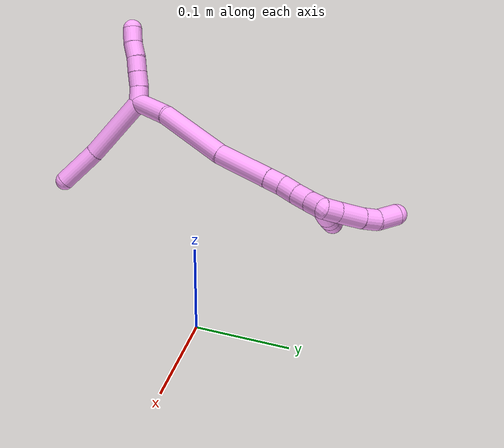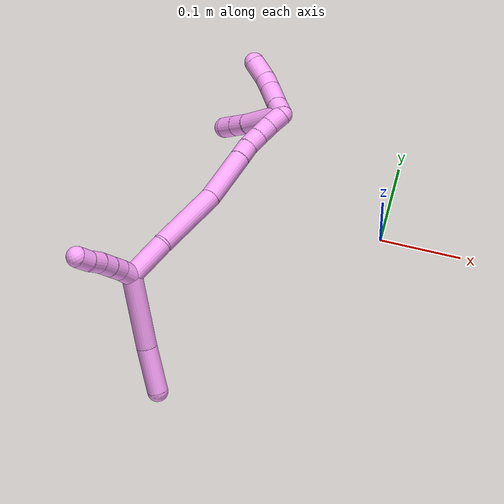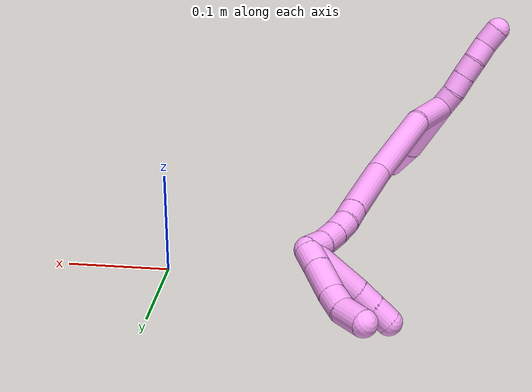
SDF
<sdf version="1.7">
 <world name="default">
  <model name="4">
   <static>0</static>
   <link name="4">
    <collision name="collision-cylinder-e_1_2_8">
     <pose>-0.01257 0.000768 -0.044527 -3.12434 -0.275113 3.01713</pose>
     <geometry><cylinder><radius>0.0125</radius><length>0.092547</length></cylinder></geometry>
     <surface>
      <friction><ode><mu>1.16</mu><mu2>1.16</mu2><slip1>0</slip1><slip2>0</slip2></ode></friction>
      <contact><ode><kp>1e+06</kp><kd>1</kd><max_vel>0</max_vel><min_depth>0.001</min_depth></ode></contact>
     </surface>
    </collision>
    <visual name="visual-cylinder-e_1_2_8">
     <pose>-0.01257 0.000768 -0.044527 -3.12434 -0.275113 3.01713</pose>
     <geometry><cylinder><radius>0.0125</radius><length>0.092547</length></cylinder></geometry>
     <material><ambient>1 0.65098 0.996078 1</ambient></material>
    </visual>
    <collision name="collision-cylinder-e_2_8_6">
     <pose>-0.031917 -0.001067 -0.116847 3.04818 -0.238131 -2.39667</pose>
     <geometry><cylinder><radius>0.0125</radius><length>0.057453</length></cylinder></geometry>
     <surface>
      <friction><ode><mu>1.16</mu><mu2>1.16</mu2><slip1>0</slip1><slip2>0</slip2></ode></friction>
      <contact><ode><kp>1e+06</kp><kd>1</kd><max_vel>0</max_vel><min_depth>0.001</min_depth></ode></contact>
     </surface>
    </collision>
    <visual name="visual-cylinder-e_2_8_6">
     <pose>-0.031917 -0.001067 -0.116847 3.04818 -0.238131 -2.39667</pose>
     <geometry><cylinder><radius>0.0125</radius><length>0.057453</length></cylinder></geometry>
     <material><ambient>1 0.65098 0.996078 1</ambient></material>
    </visual>
    <collision name="collision-cylinder-e_1_2_9">
     <pose>-0.003551 -0.004897 0.007963 0.551326 -0.363019 -0.103735</pose>
     <geometry><cylinder><radius>0.0125</radius><length>0.02</length></cylinder></geometry>
     <surface>
      <friction><ode><mu>1.16</mu><mu2>1.16</mu2><slip1>0</slip1><slip2>0</slip2></ode></friction>
      <contact><ode><kp>1e+06</kp><kd>1</kd><max_vel>0</max_vel><min_depth>0.001</min_depth></ode></contact>
     </surface>
    </collision>
    <visual name="visual-cylinder-e_1_2_9">
     <pose>-0.003551 -0.004897 0.007963 0.551326 -0.363019 -0.103735</pose>
     <geometry><cylinder><radius>0.0125</radius><length>0.02</length></cylinder></geometry>
     <material><ambient>1 0.65098 0.996078 1</ambient></material>
    </visual>
    <collision name="collision-cylinder-e_2_9_10">
     <pose>-0.010505 -0.016121 0.022882 0.738173 -0.347272 -0.135488</pose>
     <geometry><cylinder><radius>0.0125</radius><length>0.02</length></cylinder></geometry>
     <surface>
      <friction><ode><mu>1.16</mu><mu2>1.16</mu2><slip1>0</slip1><slip2>0</slip2></ode></friction>
      <contact><ode><kp>1e+06</kp><kd>1</kd><max_vel>0</max_vel><min_depth>0.001</min_depth></ode></contact>
     </surface>
    </collision>
    <visual name="visual-cylinder-e_2_9_10">
     <pose>-0.010505 -0.016121 0.022882 0.738173 -0.347272 -0.135488</pose>
     <geometry><cylinder><radius>0.0125</radius><length>0.02</length></cylinder></geometry>
     <material><ambient>1 0.65098 0.996078 1</ambient></material>
    </visual>
    <collision name="collision-cylinder-e_3_10_11">
     <pose>-0.017469 -0.028399 0.037042 0.690302 -0.364054 -0.132165</pose>
     <geometry><cylinder><radius>0.0125</radius><length>0.02</length></cylinder></geometry>
     <surface>
      <friction><ode><mu>1.16</mu><mu2>1.16</mu2><slip1>0</slip1><slip2>0</slip2></ode></friction>
      <contact><ode><kp>1e+06</kp><kd>1</kd><max_vel>0</max_vel><min_depth>0.001</min_depth></ode></contact>
     </surface>
    </collision>
    <visual name="visual-cylinder-e_3_10_11">
     <pose>-0.017469 -0.028399 0.037042 0.690302 -0.364054 -0.132165</pose>
     <geometry><cylinder><radius>0.0125</radius><length>0.02</length></cylinder></geometry>
     <material><ambient>1 0.65098 0.996078 1</ambient></material>
    </visual>
    <collision name="collision-cylinder-e_4_11_12">
     <pose>-0.025297 -0.040957 0.050423 0.819195 -0.440825 -0.193936</pose>
     <geometry><cylinder><radius>0.0125</radius><length>0.02</length></cylinder></geometry>
     <surface>
      <friction><ode><mu>1.16</mu><mu2>1.16</mu2><slip1>0</slip1><slip2>0</slip2></ode></friction>
      <contact><ode><kp>1e+06</kp><kd>1</kd><max_vel>0</max_vel><min_depth>0.001</min_depth></ode></contact>
     </surface>
    </collision>
    <visual name="visual-cylinder-e_4_11_12">
     <pose>-0.025297 -0.040957 0.050423 0.819195 -0.440825 -0.193936</pose>
     <geometry><cylinder><radius>0.0125</radius><length>0.02</length></cylinder></geometry>
     <material><ambient>1 0.65098 0.996078 1</ambient></material>
    </visual>
    <collision name="collision-cylinder-e_5_12_5">
     <pose>-0.033659 -0.052939 0.06397 0.62994 -0.421952 -0.13933</pose>
     <geometry><cylinder><radius>0.0125</radius><length>0.02</length></cylinder></geometry>
     <surface>
      <friction><ode><mu>1.16</mu><mu2>1.16</mu2><slip1>0</slip1><slip2>0</slip2></ode></friction>
      <contact><ode><kp>1e+06</kp><kd>1</kd><max_vel>0</max_vel><min_depth>0.001</min_depth></ode></contact>
     </surface>
    </collision>
    <visual name="visual-cylinder-e_5_12_5">
     <pose>-0.033659 -0.052939 0.06397 0.62994 -0.421952 -0.13933</pose>
     <geometry><cylinder><radius>0.0125</radius><length>0.02</length></cylinder></geometry>
     <material><ambient>1 0.65098 0.996078 1</ambient></material>
    </visual>
    <collision name="collision-cylinder-e_1_2_13">
     <pose>0.023074 0.013123 0.004688 -1.22766 1.0275 -0.756909</pose>
     <geometry><cylinder><radius>0.0125</radius><length>0.053911</length></cylinder></geometry>
     <surface>
      <friction><ode><mu>1.16</mu><mu2>1.16</mu2><slip1>0</slip1><slip2>0</slip2></ode></friction>
      <contact><ode><kp>1e+06</kp><kd>1</kd><max_vel>0</max_vel><min_depth>0.001</min_depth></ode></contact>
     </surface>
    </collision>
    <visual name="visual-cylinder-e_1_2_13">
     <pose>0.023074 0.013123 0.004688 -1.22766 1.0275 -0.756909</pose>
     <geometry><cylinder><radius>0.0125</radius><length>0.053911</length></cylinder></geometry>
     <material><ambient>1 0.65098 0.996078 1</ambient></material>
    </visual>
    <collision name="collision-cylinder-e_2_13_14">
     <pose>0.080692 0.058317 0.010881 -1.52392 0.821948 -0.788147</pose>
     <geometry><cylinder><radius>0.0125</radius><length>0.09432</length></cylinder></geometry>
     <surface>
      <friction><ode><mu>1.16</mu><mu2>1.16</mu2><slip1>0</slip1><slip2>0</slip2></ode></friction>
      <contact><ode><kp>1e+06</kp><kd>1</kd><max_vel>0</max_vel><min_depth>0.001</min_depth></ode></contact>
     </surface>
    </collision>
    <visual name="visual-cylinder-e_2_13_14">
     <pose>0.080692 0.058317 0.010881 -1.52392 0.821948 -0.788147</pose>
     <geometry><cylinder><radius>0.0125</radius><length>0.09432</length></cylinder></geometry>
     <material><ambient>1 0.65098 0.996078 1</ambient></material>
    </visual>
    <collision name="collision-cylinder-e_3_14_15">
     <pose>0.139834 0.113815 0.018618 -1.3108 0.792701 -0.622535</pose>
     <geometry><cylinder><radius>0.0125</radius><length>0.069073</length></cylinder></geometry>
     <surface>
      <friction><ode><mu>1.16</mu><mu2>1.16</mu2><slip1>0</slip1><slip2>0</slip2></ode></friction>
      <contact><ode><kp>1e+06</kp><kd>1</kd><max_vel>0</max_vel><min_depth>0.001</min_depth></ode></contact>
     </surface>
    </collision>
    <visual name="visual-cylinder-e_3_14_15">
     <pose>0.139834 0.113815 0.018618 -1.3108 0.792701 -0.622535</pose>
     <geometry><cylinder><radius>0.0125</radius><length>0.069073</length></cylinder></geometry>
     <material><ambient>1 0.65098 0.996078 1</ambient></material>
    </visual>
    <collision name="collision-cylinder-e_4_15_16">
     <pose>0.171495 0.144414 0.026697 -1.31876 0.761593 -0.601772</pose>
     <geometry><cylinder><radius>0.0125</radius><length>0.020467</length></cylinder></geometry>
     <surface>
      <friction><ode><mu>1.16</mu><mu2>1.16</mu2><slip1>0</slip1><slip2>0</slip2></ode></friction>
      <contact><ode><kp>1e+06</kp><kd>1</kd><max_vel>0</max_vel><min_depth>0.001</min_depth></ode></contact>
     </surface>
    </collision>
    <visual name="visual-cylinder-e_4_15_16">
     <pose>0.171495 0.144414 0.026697 -1.31876 0.761593 -0.601772</pose>
     <geometry><cylinder><radius>0.0125</radius><length>0.020467</length></cylinder></geometry>
     <material><ambient>1 0.65098 0.996078 1</ambient></material>
    </visual>
    <collision name="collision-cylinder-e_5_16_17">
     <pose>0.186789 0.157956 0.029408 -1.43582 0.907876 -0.805674</pose>
     <geometry><cylinder><radius>0.0125</radius><length>0.020888</length></cylinder></geometry>
     <surface>
      <friction><ode><mu>1.16</mu><mu2>1.16</mu2><slip1>0</slip1><slip2>0</slip2></ode></friction>
      <contact><ode><kp>1e+06</kp><kd>1</kd><max_vel>0</max_vel><min_depth>0.001</min_depth></ode></contact>
     </surface>
    </collision>
    <visual name="visual-cylinder-e_5_16_17">
     <pose>0.186789 0.157956 0.029408 -1.43582 0.907876 -0.805674</pose>
     <geometry><cylinder><radius>0.0125</radius><length>0.020888</length></cylinder></geometry>
     <material><ambient>1 0.65098 0.996078 1</ambient></material>
    </visual>
    <collision name="collision-cylinder-e_6_17_18">
     <pose>0.203674 0.169856 0.031529 -1.34755 0.99056 -0.814386</pose>
     <geometry><cylinder><radius>0.0125</radius><length>0.020693</length></cylinder></geometry>
     <surface>
      <friction><ode><mu>1.16</mu><mu2>1.16</mu2><slip1>0</slip1><slip2>0</slip2></ode></friction>
      <contact><ode><kp>1e+06</kp><kd>1</kd><max_vel>0</max_vel><min_depth>0.001</min_depth></ode></contact>
     </surface>
    </collision>
    <visual name="visual-cylinder-e_6_17_18">
     <pose>0.203674 0.169856 0.031529 -1.34755 0.99056 -0.814386</pose>
     <geometry><cylinder><radius>0.0125</radius><length>0.020693</length></cylinder></geometry>
     <material><ambient>1 0.65098 0.996078 1</ambient></material>
    </visual>
    <collision name="collision-cylinder-e_7_18_1">
     <pose>0.221838 0.179186 0.034083 -1.24144 1.17147 -0.885801</pose>
     <geometry><cylinder><radius>0.0125</radius><length>0.020648</length></cylinder></geometry>
     <surface>
      <friction><ode><mu>1.16</mu><mu2>1.16</mu2><slip1>0</slip1><slip2>0</slip2></ode></friction>
      <contact><ode><kp>1e+06</kp><kd>1</kd><max_vel>0</max_vel><min_depth>0.001</min_depth></ode></contact>
     </surface>
    </collision>
    <visual name="visual-cylinder-e_7_18_1">
     <pose>0.221838 0.179186 0.034083 -1.24144 1.17147 -0.885801</pose>
     <geometry><cylinder><radius>0.0125</radius><length>0.020648</length></cylinder></geometry>
     <material><ambient>1 0.65098 0.996078 1</ambient></material>
    </visual>
    <collision name="collision-cylinder-e_1_1_19">
     <pose>0.230767 0.192435 0.039022 -1.20312 -0.057448 0.03944</pose>
     <geometry><cylinder><radius>0.0125</radius><length>0.02029</length></cylinder></geometry>
     <surface>
      <friction><ode><mu>1.16</mu><mu2>1.16</mu2><slip1>0</slip1><slip2>0</slip2></ode></friction>
      <contact><ode><kp>1e+06</kp><kd>1</kd><max_vel>0</max_vel><min_depth>0.001</min_depth></ode></contact>
     </surface>
    </collision>
    <visual name="visual-cylinder-e_1_1_19">
     <pose>0.230767 0.192435 0.039022 -1.20312 -0.057448 0.03944</pose>
     <geometry><cylinder><radius>0.0125</radius><length>0.02029</length></cylinder></geometry>
     <material><ambient>1 0.65098 0.996078 1</ambient></material>
    </visual>
    <collision name="collision-cylinder-e_2_19_20">
     <pose>0.229931 0.21696 0.048802 -1.18401 -0.015633 0.010512</pose>
     <geometry><cylinder><radius>0.0125</radius><length>0.032556</length></cylinder></geometry>
     <surface>
      <friction><ode><mu>1.16</mu><mu2>1.16</mu2><slip1>0</slip1><slip2>0</slip2></ode></friction>
      <contact><ode><kp>1e+06</kp><kd>1</kd><max_vel>0</max_vel><min_depth>0.001</min_depth></ode></contact>
     </surface>
    </collision>
    <visual name="visual-cylinder-e_2_19_20">
     <pose>0.229931 0.21696 0.048802 -1.18401 -0.015633 0.010512</pose>
     <geometry><cylinder><radius>0.0125</radius><length>0.032556</length></cylinder></geometry>
     <material><ambient>1 0.65098 0.996078 1</ambient></material>
    </visual>
    <collision name="collision-cylinder-e_3_20_21">
     <pose>0.229355 0.24092 0.059751 -1.07475 -0.031782 0.018939</pose>
     <geometry><cylinder><radius>0.0125</radius><length>0.02022</length></cylinder></geometry>
     <surface>
      <friction><ode><mu>1.16</mu><mu2>1.16</mu2><slip1>0</slip1><slip2>0</slip2></ode></friction>
      <contact><ode><kp>1e+06</kp><kd>1</kd><max_vel>0</max_vel><min_depth>0.001</min_depth></ode></contact>
     </surface>
    </collision>
    <visual name="visual-cylinder-e_3_20_21">
     <pose>0.229355 0.24092 0.059751 -1.07475 -0.031782 0.018939</pose>
     <geometry><cylinder><radius>0.0125</radius><length>0.02022</length></cylinder></geometry>
     <material><ambient>1 0.65098 0.996078 1</ambient></material>
    </visual>
    <collision name="collision-cylinder-e_4_21_4">
     <pose>0.227042 0.258917 0.074277 -0.753199 -0.148439 0.058795</pose>
     <geometry><cylinder><radius>0.0125</radius><length>0.026935</length></cylinder></geometry>
     <surface>
      <friction><ode><mu>1.16</mu><mu2>1.16</mu2><slip1>0</slip1><slip2>0</slip2></ode></friction>
      <contact><ode><kp>1e+06</kp><kd>1</kd><max_vel>0</max_vel><min_depth>0.001</min_depth></ode></contact>
     </surface>
    </collision>
    <visual name="visual-cylinder-e_4_21_4">
     <pose>0.227042 0.258917 0.074277 -0.753199 -0.148439 0.058795</pose>
     <geometry><cylinder><radius>0.0125</radius><length>0.026935</length></cylinder></geometry>
     <material><ambient>1 0.65098 0.996078 1</ambient></material>
    </visual>
    <collision name="collision-cylinder-e_1_1_22">
     <pose>0.208372 0.201572 0.033808 -1.65521 -0.888879 0.95622</pose>
     <geometry><cylinder><radius>0.0125</radius><length>0.059194</length></cylinder></geometry>
     <surface>
      <friction><ode><mu>1.16</mu><mu2>1.16</mu2><slip1>0</slip1><slip2>0</slip2></ode></friction>
      <contact><ode><kp>1e+06</kp><kd>1</kd><max_vel>0</max_vel><min_depth>0.001</min_depth></ode></contact>
     </surface>
    </collision>
    <visual name="visual-cylinder-e_1_1_22">
     <pose>0.208372 0.201572 0.033808 -1.65521 -0.888879 0.95622</pose>
     <geometry><cylinder><radius>0.0125</radius><length>0.059194</length></cylinder></geometry>
     <material><ambient>1 0.65098 0.996078 1</ambient></material>
    </visual>
    <collision name="collision-cylinder-e_2_22_23">
     <pose>0.178144 0.227339 0.032012 -1.60189 -0.790048 0.812382</pose>
     <geometry><cylinder><radius>0.0125</radius><length>0.02041</length></cylinder></geometry>
     <surface>
      <friction><ode><mu>1.16</mu><mu2>1.16</mu2><slip1>0</slip1><slip2>0</slip2></ode></friction>
      <contact><ode><kp>1e+06</kp><kd>1</kd><max_vel>0</max_vel><min_depth>0.001</min_depth></ode></contact>
     </surface>
    </collision>
    <visual name="visual-cylinder-e_2_22_23">
     <pose>0.178144 0.227339 0.032012 -1.60189 -0.790048 0.812382</pose>
     <geometry><cylinder><radius>0.0125</radius><length>0.02041</length></cylinder></geometry>
     <material><ambient>1 0.65098 0.996078 1</ambient></material>
    </visual>
    <collision name="collision-cylinder-e_3_23_3">
     <pose>0.163651 0.241692 0.031572 -1.6011 -0.789997 0.811756</pose>
     <geometry><cylinder><radius>0.0125</radius><length>0.020396</length></cylinder></geometry>
     <surface>
      <friction><ode><mu>1.16</mu><mu2>1.16</mu2><slip1>0</slip1><slip2>0</slip2></ode></friction>
      <contact><ode><kp>1e+06</kp><kd>1</kd><max_vel>0</max_vel><min_depth>0.001</min_depth></ode></contact>
     </surface>
    </collision>
    <visual name="visual-cylinder-e_3_23_3">
     <pose>0.163651 0.241692 0.031572 -1.6011 -0.789997 0.811756</pose>
     <geometry><cylinder><radius>0.0125</radius><length>0.020396</length></cylinder></geometry>
     <material><ambient>1 0.65098 0.996078 1</ambient></material>
    </visual>
    <collision name="collision-sphere-3">
     <pose>0.156406 0.248867 0.031354 0 -0 0</pose>
     <geometry><sphere><radius>0.0125</radius></sphere></geometry>
     <surface>
      <friction><ode><mu>1.16</mu><mu2>1.16</mu2><slip1>0</slip1><slip2>0</slip2></ode></friction>
      <contact><ode><kp>1e+06</kp><kd>1</kd><max_vel>0</max_vel><min_depth>0.001</min_depth></ode></contact>
     </surface>
    </collision>
    <visual name="visual-sphere-3">
     <pose>0.156406 0.248867 0.031354 0 -0 0</pose>
     <geometry><sphere><radius>0.0125</radius></sphere></geometry>
     <material><ambient>1 0.65098 0.996078 1</ambient></material>
    </visual>
    <collision name="collision-sphere-23">
     <pose>0.170895 0.234518 0.031789 0 -0 0</pose>
     <geometry><sphere><radius>0.0125</radius></sphere></geometry>
     <surface>
      <friction><ode><mu>1.16</mu><mu2>1.16</mu2><slip1>0</slip1><slip2>0</slip2></ode></friction>
      <contact><ode><kp>1e+06</kp><kd>1</kd><max_vel>0</max_vel><min_depth>0.001</min_depth></ode></contact>
     </surface>
    </collision>
    <visual name="visual-sphere-23">
     <pose>0.170895 0.234518 0.031789 0 -0 0</pose>
     <geometry><sphere><radius>0.0125</radius></sphere></geometry>
     <material><ambient>1 0.65098 0.996078 1</ambient></material>
    </visual>
    <collision name="collision-sphere-22">
     <pose>0.185394 0.22016 0.032236 0 -0 0</pose>
     <geometry><sphere><radius>0.0125</radius></sphere></geometry>
     <surface>
      <friction><ode><mu>1.16</mu><mu2>1.16</mu2><slip1>0</slip1><slip2>0</slip2></ode></friction>
      <contact><ode><kp>1e+06</kp><kd>1</kd><max_vel>0</max_vel><min_depth>0.001</min_depth></ode></contact>
     </surface>
    </collision>
    <visual name="visual-sphere-22">
     <pose>0.185394 0.22016 0.032236 0 -0 0</pose>
     <geometry><sphere><radius>0.0125</radius></sphere></geometry>
     <material><ambient>1 0.65098 0.996078 1</ambient></material>
    </visual>
    <collision name="collision-sphere-4">
     <pose>0.22505 0.268027 0.083993 0 -0 0</pose>
     <geometry><sphere><radius>0.0125</radius></sphere></geometry>
     <surface>
      <friction><ode><mu>1.16</mu><mu2>1.16</mu2><slip1>0</slip1><slip2>0</slip2></ode></friction>
      <contact><ode><kp>1e+06</kp><kd>1</kd><max_vel>0</max_vel><min_depth>0.001</min_depth></ode></contact>
     </surface>
    </collision>
    <visual name="visual-sphere-4">
     <pose>0.22505 0.268027 0.083993 0 -0 0</pose>
     <geometry><sphere><radius>0.0125</radius></sphere></geometry>
     <material><ambient>1 0.65098 0.996078 1</ambient></material>
    </visual>
    <collision name="collision-sphere-21">
     <pose>0.229034 0.249807 0.06456 0 -0 0</pose>
     <geometry><sphere><radius>0.0125</radius></sphere></geometry>
     <surface>
      <friction><ode><mu>1.16</mu><mu2>1.16</mu2><slip1>0</slip1><slip2>0</slip2></ode></friction>
      <contact><ode><kp>1e+06</kp><kd>1</kd><max_vel>0</max_vel><min_depth>0.001</min_depth></ode></contact>
     </surface>
    </collision>
    <visual name="visual-sphere-21">
     <pose>0.229034 0.249807 0.06456 0 -0 0</pose>
     <geometry><sphere><radius>0.0125</radius></sphere></geometry>
     <material><ambient>1 0.65098 0.996078 1</ambient></material>
    </visual>
    <collision name="collision-sphere-20">
     <pose>0.229676 0.232034 0.054941 0 -0 0</pose>
     <geometry><sphere><radius>0.0125</radius></sphere></geometry>
     <surface>
      <friction><ode><mu>1.16</mu><mu2>1.16</mu2><slip1>0</slip1><slip2>0</slip2></ode></friction>
      <contact><ode><kp>1e+06</kp><kd>1</kd><max_vel>0</max_vel><min_depth>0.001</min_depth></ode></contact>
     </surface>
    </collision>
    <visual name="visual-sphere-20">
     <pose>0.229676 0.232034 0.054941 0 -0 0</pose>
     <geometry><sphere><radius>0.0125</radius></sphere></geometry>
     <material><ambient>1 0.65098 0.996078 1</ambient></material>
    </visual>
    <collision name="collision-sphere-11">
     <pose>-0.02103 -0.03435 0.044248 0 -0 0</pose>
     <geometry><sphere><radius>0.0125</radius></sphere></geometry>
     <surface>
      <friction><ode><mu>1.16</mu><mu2>1.16</mu2><slip1>0</slip1><slip2>0</slip2></ode></friction>
      <contact><ode><kp>1e+06</kp><kd>1</kd><max_vel>0</max_vel><min_depth>0.001</min_depth></ode></contact>
     </surface>
    </collision>
    <visual name="visual-sphere-11">
     <pose>-0.02103 -0.03435 0.044248 0 -0 0</pose>
     <geometry><sphere><radius>0.0125</radius></sphere></geometry>
     <material><ambient>1 0.65098 0.996078 1</ambient></material>
    </visual>
    <collision name="collision-sphere-10">
     <pose>-0.013909 -0.022449 0.029837 0 -0 0</pose>
     <geometry><sphere><radius>0.0125</radius></sphere></geometry>
     <surface>
      <friction><ode><mu>1.16</mu><mu2>1.16</mu2><slip1>0</slip1><slip2>0</slip2></ode></friction>
      <contact><ode><kp>1e+06</kp><kd>1</kd><max_vel>0</max_vel><min_depth>0.001</min_depth></ode></contact>
     </surface>
    </collision>
    <visual name="visual-sphere-10">
     <pose>-0.013909 -0.022449 0.029837 0 -0 0</pose>
     <geometry><sphere><radius>0.0125</radius></sphere></geometry>
     <material><ambient>1 0.65098 0.996078 1</ambient></material>
    </visual>
    <collision name="collision-sphere-6">
     <pose>-0.038693 -0.003671 -0.144642 0 -0 0</pose>
     <geometry><sphere><radius>0.0125</radius></sphere></geometry>
     <surface>
      <friction><ode><mu>1.16</mu><mu2>1.16</mu2><slip1>0</slip1><slip2>0</slip2></ode></friction>
      <contact><ode><kp>1e+06</kp><kd>1</kd><max_vel>0</max_vel><min_depth>0.001</min_depth></ode></contact>
     </surface>
    </collision>
    <visual name="visual-sphere-6">
     <pose>-0.038693 -0.003671 -0.144642 0 -0 0</pose>
     <geometry><sphere><radius>0.0125</radius></sphere></geometry>
     <material><ambient>1 0.65098 0.996078 1</ambient></material>
    </visual>
    <collision name="collision-sphere-9">
     <pose>-0.007102 -0.009794 0.015926 0 -0 0</pose>
     <geometry><sphere><radius>0.0125</radius></sphere></geometry>
     <surface>
      <friction><ode><mu>1.16</mu><mu2>1.16</mu2><slip1>0</slip1><slip2>0</slip2></ode></friction>
      <contact><ode><kp>1e+06</kp><kd>1</kd><max_vel>0</max_vel><min_depth>0.001</min_depth></ode></contact>
     </surface>
    </collision>
    <visual name="visual-sphere-9">
     <pose>-0.007102 -0.009794 0.015926 0 -0 0</pose>
     <geometry><sphere><radius>0.0125</radius></sphere></geometry>
     <material><ambient>1 0.65098 0.996078 1</ambient></material>
    </visual>
    <collision name="collision-sphere-2">
     <geometry><sphere><radius>0.0125</radius></sphere></geometry>
     <surface>
      <friction><ode><mu>1.16</mu><mu2>1.16</mu2><slip1>0</slip1><slip2>0</slip2></ode></friction>
      <contact><ode><kp>1e+06</kp><kd>1</kd><max_vel>0</max_vel><min_depth>0.001</min_depth></ode></contact>
     </surface>
    </collision>
    <visual name="visual-sphere-2">
     <geometry><sphere><radius>0.0125</radius></sphere></geometry>
     <material><ambient>1 0.65098 0.996078 1</ambient></material>
    </visual>
    <collision name="collision-sphere-19">
     <pose>0.230185 0.201886 0.042662 0 -0 0</pose>
     <geometry><sphere><radius>0.0125</radius></sphere></geometry>
     <surface>
      <friction><ode><mu>1.16</mu><mu2>1.16</mu2><slip1>0</slip1><slip2>0</slip2></ode></friction>
      <contact><ode><kp>1e+06</kp><kd>1</kd><max_vel>0</max_vel><min_depth>0.001</min_depth></ode></contact>
     </surface>
    </collision>
    <visual name="visual-sphere-19">
     <pose>0.230185 0.201886 0.042662 0 -0 0</pose>
     <geometry><sphere><radius>0.0125</radius></sphere></geometry>
     <material><ambient>1 0.65098 0.996078 1</ambient></material>
    </visual>
    <collision name="collision-sphere-8">
     <pose>-0.025141 0.001537 -0.089053 0 -0 0</pose>
     <geometry><sphere><radius>0.0125</radius></sphere></geometry>
     <surface>
      <friction><ode><mu>1.16</mu><mu2>1.16</mu2><slip1>0</slip1><slip2>0</slip2></ode></friction>
      <contact><ode><kp>1e+06</kp><kd>1</kd><max_vel>0</max_vel><min_depth>0.001</min_depth></ode></contact>
     </surface>
    </collision>
    <visual name="visual-sphere-8">
     <pose>-0.025141 0.001537 -0.089053 0 -0 0</pose>
     <geometry><sphere><radius>0.0125</radius></sphere></geometry>
     <material><ambient>1 0.65098 0.996078 1</ambient></material>
    </visual>
    <collision name="collision-sphere-12">
     <pose>-0.029564 -0.047565 0.056598 0 -0 0</pose>
     <geometry><sphere><radius>0.0125</radius></sphere></geometry>
     <surface>
      <friction><ode><mu>1.16</mu><mu2>1.16</mu2><slip1>0</slip1><slip2>0</slip2></ode></friction>
      <contact><ode><kp>1e+06</kp><kd>1</kd><max_vel>0</max_vel><min_depth>0.001</min_depth></ode></contact>
     </surface>
    </collision>
    <visual name="visual-sphere-12">
     <pose>-0.029564 -0.047565 0.056598 0 -0 0</pose>
     <geometry><sphere><radius>0.0125</radius></sphere></geometry>
     <material><ambient>1 0.65098 0.996078 1</ambient></material>
    </visual>
    <collision name="collision-sphere-5">
     <pose>-0.037755 -0.058313 0.071342 0 -0 0</pose>
     <geometry><sphere><radius>0.0125</radius></sphere></geometry>
     <surface>
      <friction><ode><mu>1.16</mu><mu2>1.16</mu2><slip1>0</slip1><slip2>0</slip2></ode></friction>
      <contact><ode><kp>1e+06</kp><kd>1</kd><max_vel>0</max_vel><min_depth>0.001</min_depth></ode></contact>
     </surface>
    </collision>
    <visual name="visual-sphere-5">
     <pose>-0.037755 -0.058313 0.071342 0 -0 0</pose>
     <geometry><sphere><radius>0.0125</radius></sphere></geometry>
     <material><ambient>1 0.65098 0.996078 1</ambient></material>
    </visual>
    <collision name="collision-sphere-13">
     <pose>0.046149 0.026245 0.009377 0 -0 0</pose>
     <geometry><sphere><radius>0.0125</radius></sphere></geometry>
     <surface>
      <friction><ode><mu>1.16</mu><mu2>1.16</mu2><slip1>0</slip1><slip2>0</slip2></ode></friction>
      <contact><ode><kp>1e+06</kp><kd>1</kd><max_vel>0</max_vel><min_depth>0.001</min_depth></ode></contact>
     </surface>
    </collision>
    <visual name="visual-sphere-13">
     <pose>0.046149 0.026245 0.009377 0 -0 0</pose>
     <geometry><sphere><radius>0.0125</radius></sphere></geometry>
     <material><ambient>1 0.65098 0.996078 1</ambient></material>
    </visual>
    <collision name="collision-sphere-14">
     <pose>0.115236 0.090388 0.012386 0 -0 0</pose>
     <geometry><sphere><radius>0.0125</radius></sphere></geometry>
     <surface>
      <friction><ode><mu>1.16</mu><mu2>1.16</mu2><slip1>0</slip1><slip2>0</slip2></ode></friction>
      <contact><ode><kp>1e+06</kp><kd>1</kd><max_vel>0</max_vel><min_depth>0.001</min_depth></ode></contact>
     </surface>
    </collision>
    <visual name="visual-sphere-14">
     <pose>0.115236 0.090388 0.012386 0 -0 0</pose>
     <geometry><sphere><radius>0.0125</radius></sphere></geometry>
     <material><ambient>1 0.65098 0.996078 1</ambient></material>
    </visual>
    <collision name="collision-sphere-15">
     <pose>0.164433 0.137242 0.02485 0 -0 0</pose>
     <geometry><sphere><radius>0.0125</radius></sphere></geometry>
     <surface>
      <friction><ode><mu>1.16</mu><mu2>1.16</mu2><slip1>0</slip1><slip2>0</slip2></ode></friction>
      <contact><ode><kp>1e+06</kp><kd>1</kd><max_vel>0</max_vel><min_depth>0.001</min_depth></ode></contact>
     </surface>
    </collision>
    <visual name="visual-sphere-15">
     <pose>0.164433 0.137242 0.02485 0 -0 0</pose>
     <geometry><sphere><radius>0.0125</radius></sphere></geometry>
     <material><ambient>1 0.65098 0.996078 1</ambient></material>
    </visual>
    <collision name="collision-sphere-16">
     <pose>0.178557 0.151587 0.028544 0 -0 0</pose>
     <geometry><sphere><radius>0.0125</radius></sphere></geometry>
     <surface>
      <friction><ode><mu>1.16</mu><mu2>1.16</mu2><slip1>0</slip1><slip2>0</slip2></ode></friction>
      <contact><ode><kp>1e+06</kp><kd>1</kd><max_vel>0</max_vel><min_depth>0.001</min_depth></ode></contact>
     </surface>
    </collision>
    <visual name="visual-sphere-16">
     <pose>0.178557 0.151587 0.028544 0 -0 0</pose>
     <geometry><sphere><radius>0.0125</radius></sphere></geometry>
     <material><ambient>1 0.65098 0.996078 1</ambient></material>
    </visual>
    <collision name="collision-sphere-17">
     <pose>0.195021 0.164325 0.030273 0 -0 0</pose>
     <geometry><sphere><radius>0.0125</radius></sphere></geometry>
     <surface>
      <friction><ode><mu>1.16</mu><mu2>1.16</mu2><slip1>0</slip1><slip2>0</slip2></ode></friction>
      <contact><ode><kp>1e+06</kp><kd>1</kd><max_vel>0</max_vel><min_depth>0.001</min_depth></ode></contact>
     </surface>
    </collision>
    <visual name="visual-sphere-17">
     <pose>0.195021 0.164325 0.030273 0 -0 0</pose>
     <geometry><sphere><radius>0.0125</radius></sphere></geometry>
     <material><ambient>1 0.65098 0.996078 1</ambient></material>
    </visual>
    <collision name="collision-sphere-18">
     <pose>0.212327 0.175388 0.032785 0 -0 0</pose>
     <geometry><sphere><radius>0.0125</radius></sphere></geometry>
     <surface>
      <friction><ode><mu>1.16</mu><mu2>1.16</mu2><slip1>0</slip1><slip2>0</slip2></ode></friction>
      <contact><ode><kp>1e+06</kp><kd>1</kd><max_vel>0</max_vel><min_depth>0.001</min_depth></ode></contact>
     </surface>
    </collision>
    <visual name="visual-sphere-18">
     <pose>0.212327 0.175388 0.032785 0 -0 0</pose>
     <geometry><sphere><radius>0.0125</radius></sphere></geometry>
     <material><ambient>1 0.65098 0.996078 1</ambient></material>
    </visual>
    <collision name="collision-sphere-1">
     <pose>0.23135 0.182984 0.035381 0 -0 0</pose>
     <geometry><sphere><radius>0.0125</radius></sphere></geometry>
     <surface>
      <friction><ode><mu>1.16</mu><mu2>1.16</mu2><slip1>0</slip1><slip2>0</slip2></ode></friction>
      <contact><ode><kp>1e+06</kp><kd>1</kd><max_vel>0</max_vel><min_depth>0.001</min_depth></ode></contact>
     </surface>
    </collision>
    <visual name="visual-sphere-1">
     <pose>0.23135 0.182984 0.035381 0 -0 0</pose>
     <geometry><sphere><radius>0.0125</radius></sphere></geometry>
     <material><ambient>1 0.65098 0.996078 1</ambient></material>
    </visual>
    <inertial>
     <pose>0.09619 0.091996 0.009042 0 -0 0</pose>
     <mass>0.75</mass>
     <inertia>
      <ixx>-3.6e-05</ixx>
      <ixy>0</ixy>
      <ixz>0</ixz>
      <iyy>0.000155</iyy>
      <iyz>0</iyz>
      <izz>-0.000148</izz>
     </inertia>
    </inertial>
   </link>
   <pose>-0.261299 -0.174141 0.118056 -0.783499 -0.267869 0.624599</pose>
  </model>
 </world>
</sdf>
